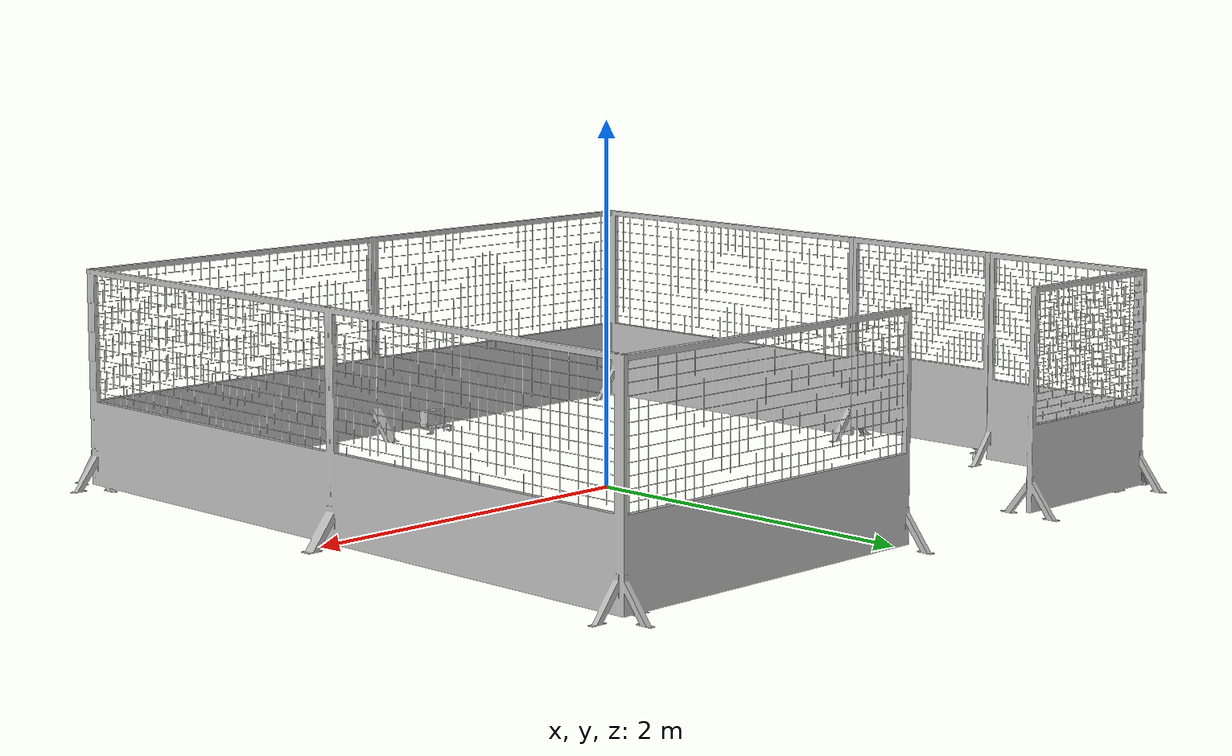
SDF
<?xml version='1.0'?>
<sdf version='1.6'>
  <model name='all_world_base'>
    <link name='all_world_base_link'>
      <pose frame=''>0 0 0 0 -0 0</pose>
      <inertial>
        <pose frame=''>-0.004689 -0.081555 0.268038 0 -0 0</pose>
        <mass>225.278</mass>
        <inertia>
          <ixx>41.2111</ixx>
          <ixy>20.212</ixy>
          <ixz>1.78947</ixz>
          <iyy>97.8946</iyy>
          <iyz>-0.563185</iyz>
          <izz>130.471</izz>
        </inertia>
      </inertial>
      <self_collide>0</self_collide>
      <enable_wind>0</enable_wind>
      <kinematic>0</kinematic>
      <visual name='all_world_base_link_visual'>
        <pose frame=''>0 0 0 0 -0 0</pose>
        <geometry>
          <mesh>
            <scale>1 1 1</scale>
            <uri>model://all_world_base/meshes/all_world_base_link.STL</uri>
          </mesh>
        </geometry>
        <transparency>0</transparency>
        <cast_shadows>1</cast_shadows>
      </visual>
      <visual name='all_world_base_link_fixed_joint_lump__door_base_link_visual_1'>
        <pose frame=''>-2.0236 0.048982 1.2 0 -0 0</pose>
        <geometry>
          <mesh>
            <scale>1 1 1</scale>
            <uri>model://all_world_base/meshes/door_base_link.STL</uri>
          </mesh>
        </geometry>
        <transparency>0</transparency>
        <cast_shadows>1</cast_shadows>
      </visual>
      <collision name='all_world_base_link_fixed_joint_lump__door_base_link_collision_1'>
        <laser_retro>0</laser_retro>
        <max_contacts>10</max_contacts>
        <pose frame=''>-2.0236 0.048982 1.2 0 -0 0</pose>
        <geometry>
          <mesh>
            <uri>model://all_world_base/meshes/door_base_link.STL</uri>
            <scale>1 1 1</scale>
          </mesh>
        </geometry>
        <surface>
          <friction>
            <ode>
              <mu>1</mu>
              <mu2>1</mu2>
              <fdir1>0 0 0</fdir1>
              <slip1>0</slip1>
              <slip2>0</slip2>
            </ode>
            <torsional>
              <coefficient>1</coefficient>
              <patch_radius>0</patch_radius>
              <surface_radius>0</surface_radius>
              <use_patch_radius>1</use_patch_radius>
              <ode>
                <slip>0</slip>
              </ode>
            </torsional>
          </friction>
          <bounce>
            <restitution_coefficient>0</restitution_coefficient>
            <threshold>1e+06</threshold>
          </bounce>
          <contact>
            <collide_without_contact>0</collide_without_contact>
            <collide_without_contact_bitmask>1</collide_without_contact_bitmask>
            <collide_bitmask>1</collide_bitmask>
            <ode>
              <soft_cfm>0</soft_cfm>
              <soft_erp>0.2</soft_erp>
              <kp>1e+13</kp>
              <kd>1</kd>
              <max_vel>0.01</max_vel>
              <min_depth>0.001</min_depth>
            </ode>
            <bullet>
              <split_impulse>1</split_impulse>
              <split_impulse_penetration_threshold>-0.01</split_impulse_penetration_threshold>
              <soft_cfm>0</soft_cfm>
              <soft_erp>0.2</soft_erp>
              <kp>1e+13</kp>
              <kd>1</kd>
            </bullet>
          </contact>
        </surface>
      </collision>
      <collision name='all_world_base_link_collision'>
        <laser_retro>0</laser_retro>
        <max_contacts>10</max_contacts>
        <pose frame=''>0 0 0 0 -0 0</pose>
        <geometry>
          <mesh>
            <uri>model://all_world_base/meshes/all_world_base_link.STL</uri>
            <scale>1 1 1</scale>
          </mesh>
        </geometry>
        <surface>
          <friction>
            <ode>
              <mu>1</mu>
              <mu2>1</mu2>
              <fdir1>0 0 0</fdir1>
              <slip1>0</slip1>
              <slip2>0</slip2>
            </ode>
            <torsional>
              <coefficient>1</coefficient>
              <patch_radius>0</patch_radius>
              <surface_radius>0</surface_radius>
              <use_patch_radius>1</use_patch_radius>
              <ode>
                <slip>0</slip>
              </ode>
            </torsional>
          </friction>
          <bounce>
            <restitution_coefficient>0</restitution_coefficient>
            <threshold>1e+06</threshold>
          </bounce>
          <contact>
            <collide_without_contact>0</collide_without_contact>
            <collide_without_contact_bitmask>1</collide_without_contact_bitmask>
            <collide_bitmask>1</collide_bitmask>
            <ode>
              <soft_cfm>0</soft_cfm>
              <soft_erp>0.2</soft_erp>
              <kp>1e+13</kp>
              <kd>1</kd>
              <max_vel>0.01</max_vel>
              <min_depth>0</min_depth>
            </ode>
            <bullet>
              <split_impulse>1</split_impulse>
              <split_impulse_penetration_threshold>-0.01</split_impulse_penetration_threshold>
              <soft_cfm>0</soft_cfm>
              <soft_erp>0.2</soft_erp>
              <kp>1e+13</kp>
              <kd>1</kd>
            </bullet>
          </contact>
        </surface>
      </collision>
    </link>
    <static>0</static>
    <allow_auto_disable>1</allow_auto_disable>
  </model>
</sdf>
